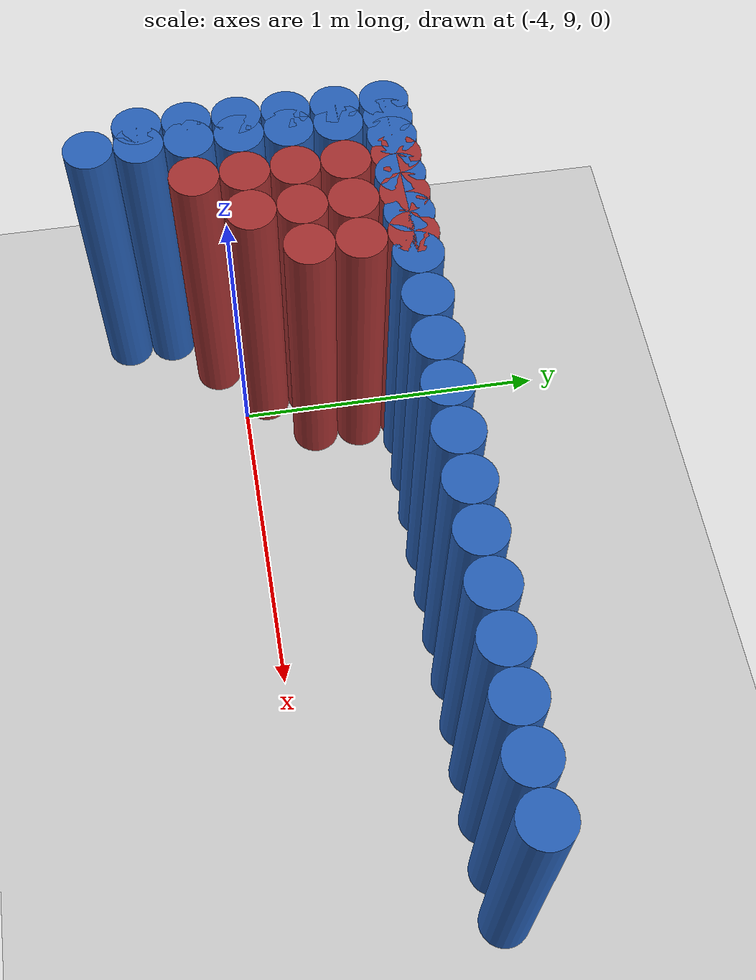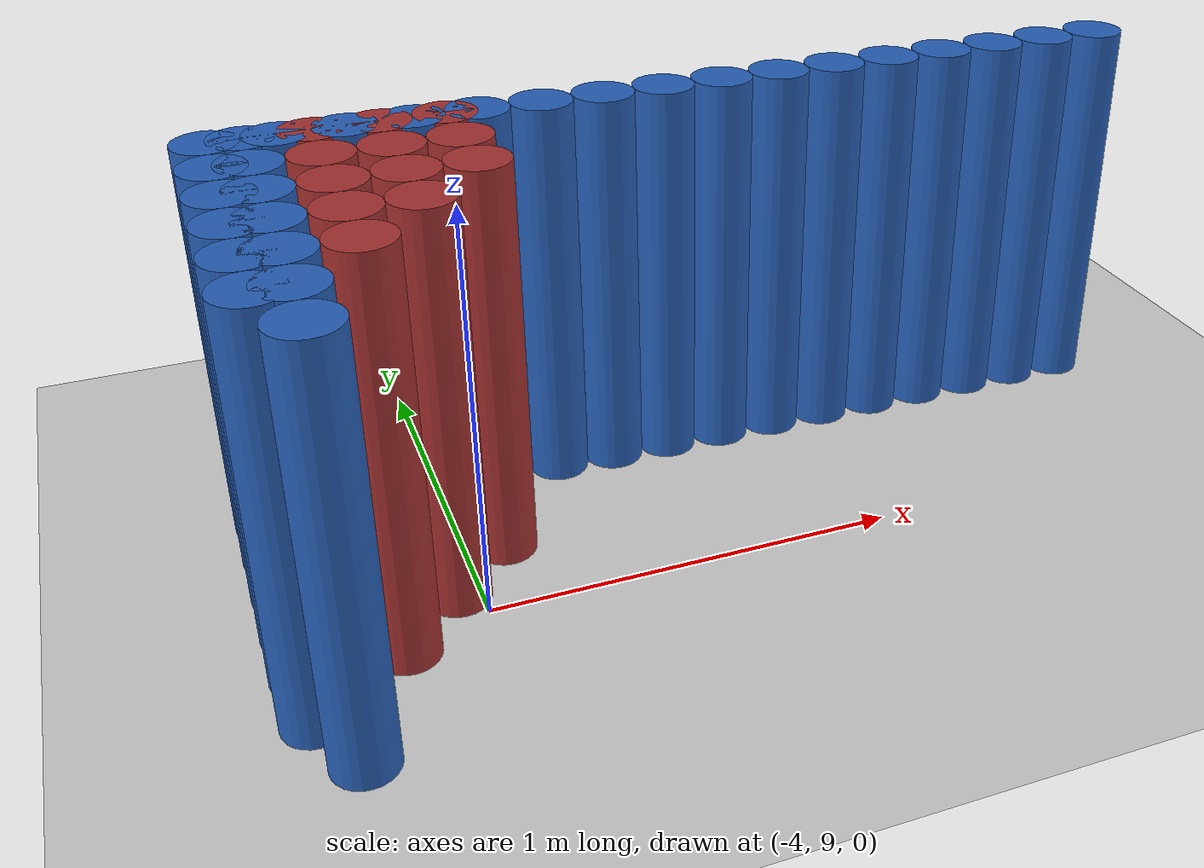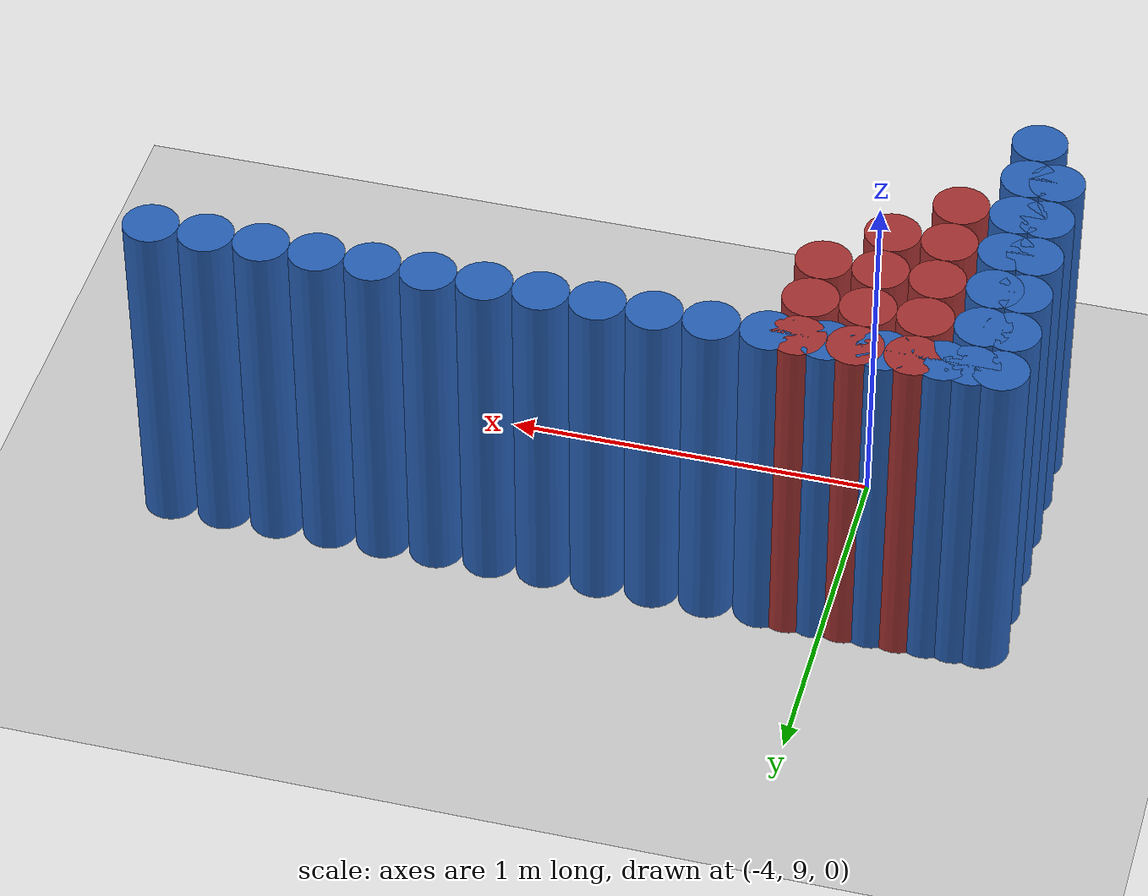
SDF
<sdf version="1.6">
 <world name="barn_world">
  <model name="ground_plane">
   <static>1</static>
   <link name="link">
    <collision name="collision">
     <geometry><plane><normal>0 0 1</normal><size>100 100</size></plane></geometry>
    </collision>
    <visual name="visual">
     <geometry><plane><normal>0 0 1</normal><size>100 100</size></plane></geometry>
     <material>
      <script><uri>file://media/materials/scripts/gazebo.material</uri><name>Gazebo/Grey</name></script>
     </material>
    </visual>
   </link>
  </model>
  <model name="unit_cylinder_149">
   <static>1</static>
   <pose>-4.3500 8.6250 0.5 0 0 0</pose>
   <link name="link">
    <collision name="collision">
     <geometry><cylinder><radius>0.075</radius><length>1</length></cylinder></geometry>
    </collision>
    <visual name="visual">
     <geometry><cylinder><radius>0.075</radius><length>1</length></cylinder></geometry>
     <material><ambient>0.152 0.379 0.72 1</ambient><diffuse>0.152 0.379 0.72 1</diffuse></material>
    </visual>
   </link>
  </model>
  <model name="unit_cylinder_150">
   <static>1</static>
   <pose>-4.3500 8.7750 0.5 0 0 0</pose>
   <link name="link">
    <collision name="collision">
     <geometry><cylinder><radius>0.075</radius><length>1</length></cylinder></geometry>
    </collision>
    <visual name="visual">
     <geometry><cylinder><radius>0.075</radius><length>1</length></cylinder></geometry>
     <material><ambient>0.152 0.379 0.72 1</ambient><diffuse>0.152 0.379 0.72 1</diffuse></material>
    </visual>
   </link>
  </model>
  <model name="unit_cylinder_151">
   <static>1</static>
   <pose>-4.3500 8.9250 0.5 0 0 0</pose>
   <link name="link">
    <collision name="collision">
     <geometry><cylinder><radius>0.075</radius><length>1</length></cylinder></geometry>
    </collision>
    <visual name="visual">
     <geometry><cylinder><radius>0.075</radius><length>1</length></cylinder></geometry>
     <material><ambient>0.152 0.379 0.72 1</ambient><diffuse>0.152 0.379 0.72 1</diffuse></material>
    </visual>
   </link>
  </model>
  <model name="unit_cylinder_152">
   <static>1</static>
   <pose>-4.3500 9.0750 0.5 0 0 0</pose>
   <link name="link">
    <collision name="collision">
     <geometry><cylinder><radius>0.075</radius><length>1</length></cylinder></geometry>
    </collision>
    <visual name="visual">
     <geometry><cylinder><radius>0.075</radius><length>1</length></cylinder></geometry>
     <material><ambient>0.152 0.379 0.72 1</ambient><diffuse>0.152 0.379 0.72 1</diffuse></material>
    </visual>
   </link>
  </model>
  <model name="unit_cylinder_153">
   <static>1</static>
   <pose>-4.3500 9.2250 0.5 0 0 0</pose>
   <link name="link">
    <collision name="collision">
     <geometry><cylinder><radius>0.075</radius><length>1</length></cylinder></geometry>
    </collision>
    <visual name="visual">
     <geometry><cylinder><radius>0.075</radius><length>1</length></cylinder></geometry>
     <material><ambient>0.152 0.379 0.72 1</ambient><diffuse>0.152 0.379 0.72 1</diffuse></material>
    </visual>
   </link>
  </model>
  <model name="unit_cylinder_154">
   <static>1</static>
   <pose>-4.3500 9.3750 0.5 0 0 0</pose>
   <link name="link">
    <collision name="collision">
     <geometry><cylinder><radius>0.075</radius><length>1</length></cylinder></geometry>
    </collision>
    <visual name="visual">
     <geometry><cylinder><radius>0.075</radius><length>1</length></cylinder></geometry>
     <material><ambient>0.152 0.379 0.72 1</ambient><diffuse>0.152 0.379 0.72 1</diffuse></material>
    </visual>
   </link>
  </model>
  <model name="unit_cylinder_155">
   <static>1</static>
   <pose>-4.3500 9.5250 0.5 0 0 0</pose>
   <link name="link">
    <collision name="collision">
     <geometry><cylinder><radius>0.075</radius><length>1</length></cylinder></geometry>
    </collision>
    <visual name="visual">
     <geometry><cylinder><radius>0.075</radius><length>1</length></cylinder></geometry>
     <material><ambient>0.152 0.379 0.72 1</ambient><diffuse>0.152 0.379 0.72 1</diffuse></material>
    </visual>
   </link>
  </model>
  <model name="unit_cylinder_156">
   <static>1</static>
   <pose>-4.2000 8.9250 0.5 0 0 0</pose>
   <link name="link">
    <collision name="collision">
     <geometry><cylinder><radius>0.075</radius><length>1</length></cylinder></geometry>
    </collision>
    <visual name="visual">
     <geometry><cylinder><radius>0.075</radius><length>1</length></cylinder></geometry>
     <material><ambient>0.648 0.192 0.192 1</ambient><diffuse>0.648 0.192 0.192 1</diffuse></material>
    </visual>
   </link>
  </model>
  <model name="unit_cylinder_157">
   <static>1</static>
   <pose>-4.2000 9.0750 0.5 0 0 0</pose>
   <link name="link">
    <collision name="collision">
     <geometry><cylinder><radius>0.075</radius><length>1</length></cylinder></geometry>
    </collision>
    <visual name="visual">
     <geometry><cylinder><radius>0.075</radius><length>1</length></cylinder></geometry>
     <material><ambient>0.648 0.192 0.192 1</ambient><diffuse>0.648 0.192 0.192 1</diffuse></material>
    </visual>
   </link>
  </model>
  <model name="unit_cylinder_158">
   <static>1</static>
   <pose>-4.2000 9.2250 0.5 0 0 0</pose>
   <link name="link">
    <collision name="collision">
     <geometry><cylinder><radius>0.075</radius><length>1</length></cylinder></geometry>
    </collision>
    <visual name="visual">
     <geometry><cylinder><radius>0.075</radius><length>1</length></cylinder></geometry>
     <material><ambient>0.648 0.192 0.192 1</ambient><diffuse>0.648 0.192 0.192 1</diffuse></material>
    </visual>
   </link>
  </model>
  <model name="unit_cylinder_159">
   <static>1</static>
   <pose>-4.2000 9.3750 0.5 0 0 0</pose>
   <link name="link">
    <collision name="collision">
     <geometry><cylinder><radius>0.075</radius><length>1</length></cylinder></geometry>
    </collision>
    <visual name="visual">
     <geometry><cylinder><radius>0.075</radius><length>1</length></cylinder></geometry>
     <material><ambient>0.648 0.192 0.192 1</ambient><diffuse>0.648 0.192 0.192 1</diffuse></material>
    </visual>
   </link>
  </model>
  <model name="unit_cylinder_160">
   <static>1</static>
   <pose>-4.2000 9.5250 0.5 0 0 0</pose>
   <link name="link">
    <collision name="collision">
     <geometry><cylinder><radius>0.075</radius><length>1</length></cylinder></geometry>
    </collision>
    <visual name="visual">
     <geometry><cylinder><radius>0.075</radius><length>1</length></cylinder></geometry>
     <material><ambient>0.648 0.192 0.192 1</ambient><diffuse>0.648 0.192 0.192 1</diffuse></material>
    </visual>
   </link>
  </model>
  <model name="unit_cylinder_161">
   <static>1</static>
   <pose>-4.0500 9.0750 0.5 0 0 0</pose>
   <link name="link">
    <collision name="collision">
     <geometry><cylinder><radius>0.075</radius><length>1</length></cylinder></geometry>
    </collision>
    <visual name="visual">
     <geometry><cylinder><radius>0.075</radius><length>1</length></cylinder></geometry>
     <material><ambient>0.648 0.192 0.192 1</ambient><diffuse>0.648 0.192 0.192 1</diffuse></material>
    </visual>
   </link>
  </model>
  <model name="unit_cylinder_162">
   <static>1</static>
   <pose>-4.0500 9.2250 0.5 0 0 0</pose>
   <link name="link">
    <collision name="collision">
     <geometry><cylinder><radius>0.075</radius><length>1</length></cylinder></geometry>
    </collision>
    <visual name="visual">
     <geometry><cylinder><radius>0.075</radius><length>1</length></cylinder></geometry>
     <material><ambient>0.648 0.192 0.192 1</ambient><diffuse>0.648 0.192 0.192 1</diffuse></material>
    </visual>
   </link>
  </model>
  <model name="unit_cylinder_163">
   <static>1</static>
   <pose>-4.0500 9.3750 0.5 0 0 0</pose>
   <link name="link">
    <collision name="collision">
     <geometry><cylinder><radius>0.075</radius><length>1</length></cylinder></geometry>
    </collision>
    <visual name="visual">
     <geometry><cylinder><radius>0.075</radius><length>1</length></cylinder></geometry>
     <material><ambient>0.648 0.192 0.192 1</ambient><diffuse>0.648 0.192 0.192 1</diffuse></material>
    </visual>
   </link>
  </model>
  <model name="unit_cylinder_164">
   <static>1</static>
   <pose>-4.0500 9.5250 0.5 0 0 0</pose>
   <link name="link">
    <collision name="collision">
     <geometry><cylinder><radius>0.075</radius><length>1</length></cylinder></geometry>
    </collision>
    <visual name="visual">
     <geometry><cylinder><radius>0.075</radius><length>1</length></cylinder></geometry>
     <material><ambient>0.648 0.192 0.192 1</ambient><diffuse>0.648 0.192 0.192 1</diffuse></material>
    </visual>
   </link>
  </model>
  <model name="unit_cylinder_165">
   <static>1</static>
   <pose>-3.9000 9.2250 0.5 0 0 0</pose>
   <link name="link">
    <collision name="collision">
     <geometry><cylinder><radius>0.075</radius><length>1</length></cylinder></geometry>
    </collision>
    <visual name="visual">
     <geometry><cylinder><radius>0.075</radius><length>1</length></cylinder></geometry>
     <material><ambient>0.648 0.192 0.192 1</ambient><diffuse>0.648 0.192 0.192 1</diffuse></material>
    </visual>
   </link>
  </model>
  <model name="unit_cylinder_166">
   <static>1</static>
   <pose>-3.9000 9.3750 0.5 0 0 0</pose>
   <link name="link">
    <collision name="collision">
     <geometry><cylinder><radius>0.075</radius><length>1</length></cylinder></geometry>
    </collision>
    <visual name="visual">
     <geometry><cylinder><radius>0.075</radius><length>1</length></cylinder></geometry>
     <material><ambient>0.648 0.192 0.192 1</ambient><diffuse>0.648 0.192 0.192 1</diffuse></material>
    </visual>
   </link>
  </model>
  <model name="unit_cylinder_167">
   <static>1</static>
   <pose>-3.9000 9.5250 0.5 0 0 0</pose>
   <link name="link">
    <collision name="collision">
     <geometry><cylinder><radius>0.075</radius><length>1</length></cylinder></geometry>
    </collision>
    <visual name="visual">
     <geometry><cylinder><radius>0.075</radius><length>1</length></cylinder></geometry>
     <material><ambient>0.648 0.192 0.192 1</ambient><diffuse>0.648 0.192 0.192 1</diffuse></material>
    </visual>
   </link>
  </model>
  <model name="unit_cylinder_248">
   <static>1</static>
   <pose>-2.1750 9.5250 0.5 0 0 0</pose>
   <link name="link">
    <collision name="collision">
     <geometry><cylinder><radius>0.075</radius><length>1</length></cylinder></geometry>
    </collision>
    <visual name="visual">
     <geometry><cylinder><radius>0.075</radius><length>1</length></cylinder></geometry>
     <material><ambient>0.152 0.379 0.72 1</ambient><diffuse>0.152 0.379 0.72 1</diffuse></material>
    </visual>
   </link>
  </model>
  <model name="unit_cylinder_249">
   <static>1</static>
   <pose>-2.3250 9.5250 0.5 0 0 0</pose>
   <link name="link">
    <collision name="collision">
     <geometry><cylinder><radius>0.075</radius><length>1</length></cylinder></geometry>
    </collision>
    <visual name="visual">
     <geometry><cylinder><radius>0.075</radius><length>1</length></cylinder></geometry>
     <material><ambient>0.152 0.379 0.72 1</ambient><diffuse>0.152 0.379 0.72 1</diffuse></material>
    </visual>
   </link>
  </model>
  <model name="unit_cylinder_250">
   <static>1</static>
   <pose>-2.4750 9.5250 0.5 0 0 0</pose>
   <link name="link">
    <collision name="collision">
     <geometry><cylinder><radius>0.075</radius><length>1</length></cylinder></geometry>
    </collision>
    <visual name="visual">
     <geometry><cylinder><radius>0.075</radius><length>1</length></cylinder></geometry>
     <material><ambient>0.152 0.379 0.72 1</ambient><diffuse>0.152 0.379 0.72 1</diffuse></material>
    </visual>
   </link>
  </model>
  <model name="unit_cylinder_251">
   <static>1</static>
   <pose>-2.6250 9.5250 0.5 0 0 0</pose>
   <link name="link">
    <collision name="collision">
     <geometry><cylinder><radius>0.075</radius><length>1</length></cylinder></geometry>
    </collision>
    <visual name="visual">
     <geometry><cylinder><radius>0.075</radius><length>1</length></cylinder></geometry>
     <material><ambient>0.152 0.379 0.72 1</ambient><diffuse>0.152 0.379 0.72 1</diffuse></material>
    </visual>
   </link>
  </model>
  <model name="unit_cylinder_252">
   <static>1</static>
   <pose>-2.7750 9.5250 0.5 0 0 0</pose>
   <link name="link">
    <collision name="collision">
     <geometry><cylinder><radius>0.075</radius><length>1</length></cylinder></geometry>
    </collision>
    <visual name="visual">
     <geometry><cylinder><radius>0.075</radius><length>1</length></cylinder></geometry>
     <material><ambient>0.152 0.379 0.72 1</ambient><diffuse>0.152 0.379 0.72 1</diffuse></material>
    </visual>
   </link>
  </model>
  <model name="unit_cylinder_253">
   <static>1</static>
   <pose>-2.9250 9.5250 0.5 0 0 0</pose>
   <link name="link">
    <collision name="collision">
     <geometry><cylinder><radius>0.075</radius><length>1</length></cylinder></geometry>
    </collision>
    <visual name="visual">
     <geometry><cylinder><radius>0.075</radius><length>1</length></cylinder></geometry>
     <material><ambient>0.152 0.379 0.72 1</ambient><diffuse>0.152 0.379 0.72 1</diffuse></material>
    </visual>
   </link>
  </model>
  <model name="unit_cylinder_254">
   <static>1</static>
   <pose>-3.0750 9.5250 0.5 0 0 0</pose>
   <link name="link">
    <collision name="collision">
     <geometry><cylinder><radius>0.075</radius><length>1</length></cylinder></geometry>
    </collision>
    <visual name="visual">
     <geometry><cylinder><radius>0.075</radius><length>1</length></cylinder></geometry>
     <material><ambient>0.152 0.379 0.72 1</ambient><diffuse>0.152 0.379 0.72 1</diffuse></material>
    </visual>
   </link>
  </model>
  <model name="unit_cylinder_255">
   <static>1</static>
   <pose>-3.2250 9.5250 0.5 0 0 0</pose>
   <link name="link">
    <collision name="collision">
     <geometry><cylinder><radius>0.075</radius><length>1</length></cylinder></geometry>
    </collision>
    <visual name="visual">
     <geometry><cylinder><radius>0.075</radius><length>1</length></cylinder></geometry>
     <material><ambient>0.152 0.379 0.72 1</ambient><diffuse>0.152 0.379 0.72 1</diffuse></material>
    </visual>
   </link>
  </model>
  <model name="unit_cylinder_256">
   <static>1</static>
   <pose>-3.3750 9.5250 0.5 0 0 0</pose>
   <link name="link">
    <collision name="collision">
     <geometry><cylinder><radius>0.075</radius><length>1</length></cylinder></geometry>
    </collision>
    <visual name="visual">
     <geometry><cylinder><radius>0.075</radius><length>1</length></cylinder></geometry>
     <material><ambient>0.152 0.379 0.72 1</ambient><diffuse>0.152 0.379 0.72 1</diffuse></material>
    </visual>
   </link>
  </model>
  <model name="unit_cylinder_257">
   <static>1</static>
   <pose>-3.5250 9.5250 0.5 0 0 0</pose>
   <link name="link">
    <collision name="collision">
     <geometry><cylinder><radius>0.075</radius><length>1</length></cylinder></geometry>
    </collision>
    <visual name="visual">
     <geometry><cylinder><radius>0.075</radius><length>1</length></cylinder></geometry>
     <material><ambient>0.152 0.379 0.72 1</ambient><diffuse>0.152 0.379 0.72 1</diffuse></material>
    </visual>
   </link>
  </model>
  <model name="unit_cylinder_258">
   <static>1</static>
   <pose>-3.6750 9.5250 0.5 0 0 0</pose>
   <link name="link">
    <collision name="collision">
     <geometry><cylinder><radius>0.075</radius><length>1</length></cylinder></geometry>
    </collision>
    <visual name="visual">
     <geometry><cylinder><radius>0.075</radius><length>1</length></cylinder></geometry>
     <material><ambient>0.152 0.379 0.72 1</ambient><diffuse>0.152 0.379 0.72 1</diffuse></material>
    </visual>
   </link>
  </model>
  <model name="unit_cylinder_259">
   <static>1</static>
   <pose>-3.8250 9.5250 0.5 0 0 0</pose>
   <link name="link">
    <collision name="collision">
     <geometry><cylinder><radius>0.075</radius><length>1</length></cylinder></geometry>
    </collision>
    <visual name="visual">
     <geometry><cylinder><radius>0.075</radius><length>1</length></cylinder></geometry>
     <material><ambient>0.152 0.379 0.72 1</ambient><diffuse>0.152 0.379 0.72 1</diffuse></material>
    </visual>
   </link>
  </model>
  <model name="unit_cylinder_260">
   <static>1</static>
   <pose>-3.9750 9.5250 0.5 0 0 0</pose>
   <link name="link">
    <collision name="collision">
     <geometry><cylinder><radius>0.075</radius><length>1</length></cylinder></geometry>
    </collision>
    <visual name="visual">
     <geometry><cylinder><radius>0.075</radius><length>1</length></cylinder></geometry>
     <material><ambient>0.152 0.379 0.72 1</ambient><diffuse>0.152 0.379 0.72 1</diffuse></material>
    </visual>
   </link>
  </model>
  <model name="unit_cylinder_261">
   <static>1</static>
   <pose>-4.1250 9.5250 0.5 0 0 0</pose>
   <link name="link">
    <collision name="collision">
     <geometry><cylinder><radius>0.075</radius><length>1</length></cylinder></geometry>
    </collision>
    <visual name="visual">
     <geometry><cylinder><radius>0.075</radius><length>1</length></cylinder></geometry>
     <material><ambient>0.152 0.379 0.72 1</ambient><diffuse>0.152 0.379 0.72 1</diffuse></material>
    </visual>
   </link>
  </model>
  <model name="unit_cylinder_262">
   <static>1</static>
   <pose>-4.2750 9.5250 0.5 0 0 0</pose>
   <link name="link">
    <collision name="collision">
     <geometry><cylinder><radius>0.075</radius><length>1</length></cylinder></geometry>
    </collision>
    <visual name="visual">
     <geometry><cylinder><radius>0.075</radius><length>1</length></cylinder></geometry>
     <material><ambient>0.152 0.379 0.72 1</ambient><diffuse>0.152 0.379 0.72 1</diffuse></material>
    </visual>
   </link>
  </model>
  <model name="unit_cylinder_263">
   <static>1</static>
   <pose>-4.4250 9.5250 0.5 0 0 0</pose>
   <link name="link">
    <collision name="collision">
     <geometry><cylinder><radius>0.075</radius><length>1</length></cylinder></geometry>
    </collision>
    <visual name="visual">
     <geometry><cylinder><radius>0.075</radius><length>1</length></cylinder></geometry>
     <material><ambient>0.152 0.379 0.72 1</ambient><diffuse>0.152 0.379 0.72 1</diffuse></material>
    </visual>
   </link>
  </model>
  <model name="unit_cylinder_313">
   <static>1</static>
   <pose>-4.4250 8.7750 0.5 0 0 0</pose>
   <link name="link">
    <collision name="collision">
     <geometry><cylinder><radius>0.075</radius><length>1</length></cylinder></geometry>
    </collision>
    <visual name="visual">
     <geometry><cylinder><radius>0.075</radius><length>1</length></cylinder></geometry>
     <material><ambient>0.152 0.379 0.72 1</ambient><diffuse>0.152 0.379 0.72 1</diffuse></material>
    </visual>
   </link>
  </model>
  <model name="unit_cylinder_315">
   <static>1</static>
   <pose>-4.4250 8.9250 0.5 0 0 0</pose>
   <link name="link">
    <collision name="collision">
     <geometry><cylinder><radius>0.075</radius><length>1</length></cylinder></geometry>
    </collision>
    <visual name="visual">
     <geometry><cylinder><radius>0.075</radius><length>1</length></cylinder></geometry>
     <material><ambient>0.152 0.379 0.72 1</ambient><diffuse>0.152 0.379 0.72 1</diffuse></material>
    </visual>
   </link>
  </model>
  <model name="unit_cylinder_317">
   <static>1</static>
   <pose>-4.4250 9.0750 0.5 0 0 0</pose>
   <link name="link">
    <collision name="collision">
     <geometry><cylinder><radius>0.075</radius><length>1</length></cylinder></geometry>
    </collision>
    <visual name="visual">
     <geometry><cylinder><radius>0.075</radius><length>1</length></cylinder></geometry>
     <material><ambient>0.152 0.379 0.72 1</ambient><diffuse>0.152 0.379 0.72 1</diffuse></material>
    </visual>
   </link>
  </model>
  <model name="unit_cylinder_319">
   <static>1</static>
   <pose>-4.4250 9.2250 0.5 0 0 0</pose>
   <link name="link">
    <collision name="collision">
     <geometry><cylinder><radius>0.075</radius><length>1</length></cylinder></geometry>
    </collision>
    <visual name="visual">
     <geometry><cylinder><radius>0.075</radius><length>1</length></cylinder></geometry>
     <material><ambient>0.152 0.379 0.72 1</ambient><diffuse>0.152 0.379 0.72 1</diffuse></material>
    </visual>
   </link>
  </model>
  <model name="unit_cylinder_321">
   <static>1</static>
   <pose>-4.4250 9.3750 0.5 0 0 0</pose>
   <link name="link">
    <collision name="collision">
     <geometry><cylinder><radius>0.075</radius><length>1</length></cylinder></geometry>
    </collision>
    <visual name="visual">
     <geometry><cylinder><radius>0.075</radius><length>1</length></cylinder></geometry>
     <material><ambient>0.152 0.379 0.72 1</ambient><diffuse>0.152 0.379 0.72 1</diffuse></material>
    </visual>
   </link>
  </model>
 </world>
</sdf>
